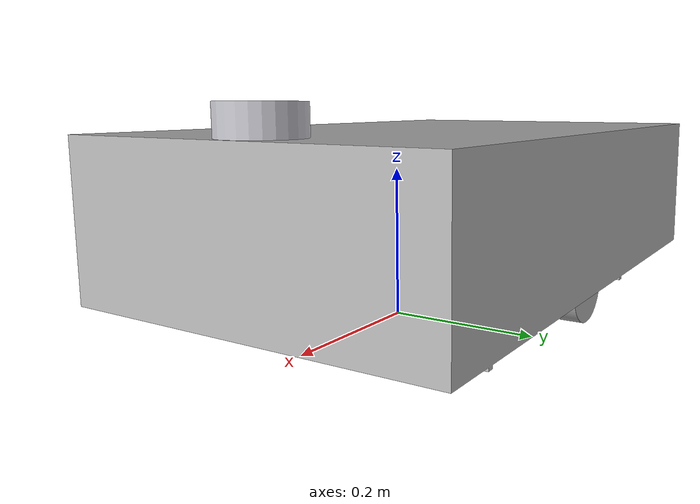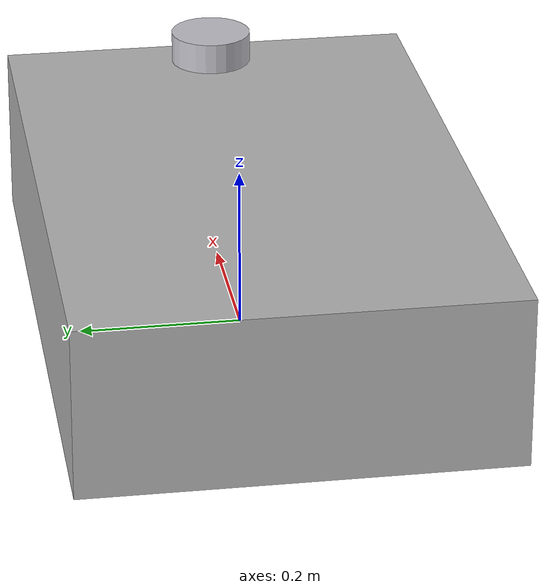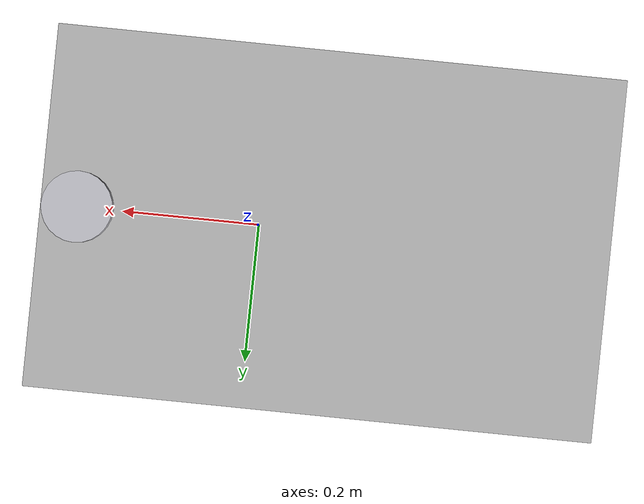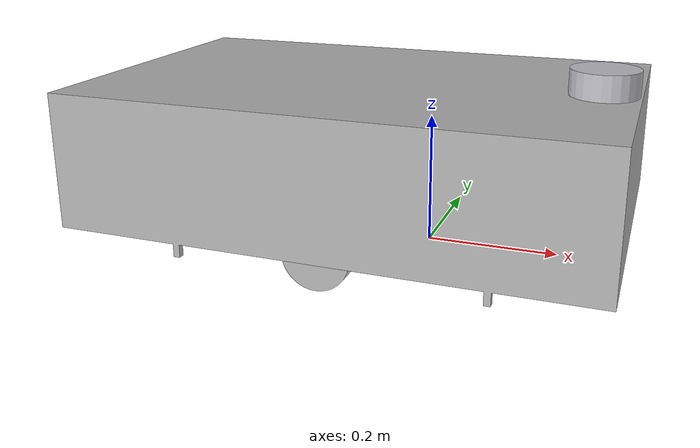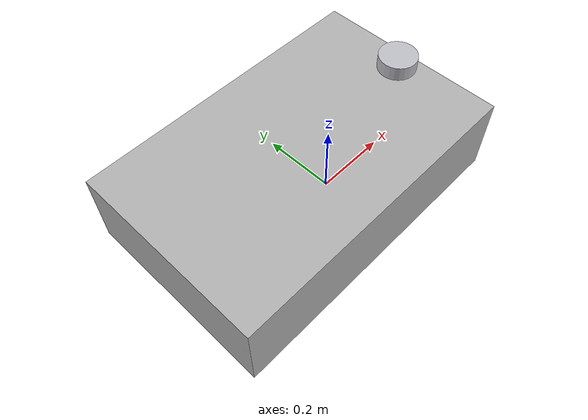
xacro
<?xml version="1.0"?>
<robot name="AMR_1" xmlns:xacro="http://www.ros.org/wiki/xacro">

  <xacro:include filename="$(find AMR_1_description)/urdf/materials.xacro" />
  <xacro:include filename="$(find AMR_1_description)/urdf/AMR_1.trans" />
  <xacro:include filename="$(find AMR_1_description)/urdf/AMR_1.gazebo" />
  <link name="base_link">
    <inertial>
      <origin xyz="-0.09707247884461136 0.002072478843386918 0.14942426072239354" rpy="0 0 0" />
      <mass value="51.82726999999997" />
      <inertia ixx="2.011849" iyy="3.961042" izz="5.206602" ixy="0.0" iyz="0.0" ixz="-0.0" />
    </inertial>
    <visual>
      <origin xyz="0 0 0" rpy="0 0 0" />
      <geometry>
        <mesh filename="package://AMR_1_description/meshes/base_link.stl" scale="0.01 0.01 0.01" />
      </geometry>
      <material name="silver" />
    </visual>
    <collision>
      <origin xyz="0 0 0" rpy="0 0 0" />
      <geometry>
        <mesh filename="package://AMR_1_description/meshes/base_link.stl" scale="0.01 0.01 0.01" />
      </geometry>
    </collision>
  </link>

  <link name="right_wheel_link">
    <inertial>
      <origin xyz="-4.788394118576678e-07 -0.014999521160592805 -8.943361532592897e-08" rpy="0 0 0" />
      <mass value="1.8496126748009905" />
      <inertia ixx="0.001295" iyy="0.002312" izz="0.001295" ixy="-0.0" iyz="0.0" ixz="0.0" />
    </inertial>
    <visual>
      <origin xyz="0.097072 0.202928 -0.049293" rpy="0 0 0" />
      <geometry>
        <mesh filename="package://AMR_1_description/meshes/Component3_1.stl"
          scale="0.01 0.01 0.01" />
      </geometry>
      <material name="silver" />
    </visual>
    <collision>
      <origin xyz="0.097072 0.202928 -0.049293" rpy="0 0 0" />
      <geometry>
        <mesh filename="package://AMR_1_description/meshes/Component3_1.stl"
          scale="0.01 0.01 0.01" />
      </geometry>
    </collision>
  </link>

  <link name="left_wheel_link">
    <inertial>
      <origin xyz="-4.788394269844565e-07 -0.014999521160591889 -8.943361524960114e-08" rpy="0 0 0" />
      <mass value="1.8496126748009905" />
      <inertia ixx="0.001295" iyy="0.002312" izz="0.001295" ixy="-0.0" iyz="-0.0" ixz="0.0" />
    </inertial>
    <visual>
      <origin xyz="0.097072 -0.237072 -0.049293" rpy="0 0 0" />
      <geometry>
        <mesh filename="package://AMR_1_description/meshes/Component1_1.stl"
          scale="0.01 0.01 0.01" />
      </geometry>
      <material name="silver" />
    </visual>
    <collision>
      <origin xyz="0.097072 -0.237072 -0.049293" rpy="0 0 0" />
      <geometry>
        <mesh filename="package://AMR_1_description/meshes/Component1_1.stl"
          scale="0.01 0.01 0.01" />
      </geometry>
    </collision>
  </link>

  <link name="lidar_link">
    <visual>
      <geometry>
        <cylinder radius="0.05" length="0.04" />
      </geometry>
    </visual>
    <collision>
      <geometry>
        <cylinder radius="0.05" length="0.04" />
      </geometry>
    </collision>
    <inertial>
      <mass value="0.5" />
      <inertia ixx="0.000252666666667" ixy="0" ixz="0" iyy="0.000252666666667" iyz="0" izz="0.0005" />
    </inertial>
  </link>

  <link name="robot_footprint">

  </link>
  <joint name="Revolute_3" type="continuous">
    <origin xyz="-0.097072 -0.202928 0.049293" rpy="0 0 0" />
    <parent link="base_link" />
    <child link="right_wheel_link" />
    <axis xyz="0.0 1.0 0.0" />
  </joint>

  <joint name="Revolute_4" type="continuous">
    <origin xyz="-0.097072 0.237072 0.049293" rpy="0 0 0" />
    <parent link="base_link" />
    <child link="left_wheel_link" />
    <axis xyz="0.0 1.0 0.0" />
  </joint>

  <joint name="Rigid_5" type="fixed">
    <origin xyz="0.25 0 0.27" rpy="0 0 0" />
    <parent link="base_link" />
    <child link="lidar_link" />
  </joint>
  <joint name="dummy_joint" type="fixed">
    <parent link="robot_footprint" />
    <child link="base_link" />
  </joint>
</robot>

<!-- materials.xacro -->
<robot name="AMR_1" xmlns:xacro="http://www.ros.org/wiki/xacro" >

<material name="silver">
  <color rgba="0.700 0.700 0.700 1.000"/>
</material>

</robot>

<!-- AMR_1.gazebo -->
<robot name="AMR_1" xmlns:xacro="http://www.ros.org/wiki/xacro">

  <xacro:property name="body_color" value="Gazebo/Silver" />

  <gazebo reference="base_link">
    <material>${body_color}</material>
    <mu1>0.2</mu1>
    <mu2>0.2</mu2>
    <selfCollide>true</selfCollide>
    <gravity>true</gravity>
  </gazebo>

  <gazebo reference="right_wheel_link">
    <material>${body_color}</material>
    <mu1>2000</mu1>
    <mu2>2000</mu2>
    <selfCollide>true</selfCollide>
  </gazebo>

  <gazebo reference="left_wheel_link">
    <material>${body_color}</material>
    <mu1>2000</mu1>
    <mu2>2000</mu2>
    <selfCollide>true</selfCollide>
  </gazebo>

  <gazebo reference="lidar_link">
    <material>${body_color}</material>
    <mu1>0.2</mu1>
    <mu2>0.2</mu2>
    <selfCollide>true</selfCollide>
  </gazebo>

  <gazebo>
    <plugin name="differential_drive_controller" filename="libgazebo_ros_diff_drive.so">

      <!-- Plugin update rate in Hz -->
      <updateRate>50</updateRate>

      <!-- Name of left joint, defaults to `left_joint` -->
      <leftJoint>Revolute_4</leftJoint>

      <!-- Name of right joint, defaults to `right_joint` -->
      <rightJoint>Revolute_3</rightJoint>

      <!-- The distance from the center of one wheel to the other, in meters, defaults to 0.34 m -->
      <wheelSeparation>0.5380</wheelSeparation>

      <!-- Diameter of the wheels, in meters, defaults to 0.15 m -->
      <wheelDiameter>0.2410</wheelDiameter>

      <!-- Wheel acceleration, in rad/s^2, defaults to 0.0 rad/s^2 -->
      <wheelAcceleration>1.0</wheelAcceleration>

      <!-- Maximum torque which the wheels can produce, in Nm, defaults to 5 Nm -->
      <wheelTorque>20</wheelTorque>

      <!-- Topic to receive geometry_msgs/Twist message commands, defaults to `cmd_vel` -->
      <commandTopic>cmd_vel</commandTopic>

      <!-- Topic to publish nav_msgs/Odometry messages, defaults to `odom` -->
      <odometryTopic>odom</odometryTopic>

      <!-- Odometry frame, defaults to `odom` -->
      <odometryFrame>odom</odometryFrame>

      <!-- Robot frame to calculate odometry from, defaults to `base_footprint` -->
      <robotBaseFrame>robot_footprint</robotBaseFrame>

      <!-- Odometry source, 0 for ENCODER, 1 for WORLD, defaults to WORLD -->
      <odometrySource>1</odometrySource>

      <!-- Set to true to publish transforms for the wheel links, defaults to false -->
      <publishWheelTF>true</publishWheelTF>

      <!-- Set to true to publish transforms for the odometry, defaults to true -->
      <publishOdom>true</publishOdom>

      <!-- Set to true to publish sensor_msgs/JointState on /joint_states for the wheel joints,
      defaults to false -->
      <publishWheelJointState>true</publishWheelJointState>

      <!-- Set to true to swap right and left wheels, defaults to true -->
      <legacyMode>false</legacyMode>
    </plugin>
  </gazebo>
  <gazebo reference="lidar_link">
    <sensor type="ray" name="head_hokuyo_sensor">
      <visualize>false</visualize>
      <update_rate>40</update_rate>
      <ray>
        <scan>
          <horizontal>
            <samples>720</samples>
            <resolution>1</resolution>
            <min_angle>-1.570796</min_angle>
            <max_angle>1.570796</max_angle>
          </horizontal>
        </scan>
        <range>
          <min>0.10</min>
          <max>10.0</max>
          <resolution>0.001</resolution>
        </range>
      </ray>
      <plugin name="gazebo_ros_head_hokuyo_controller"
        filename="libgazebo_ros_laser.so">
        <topicName>/scan</topicName>
        <frameName>lidar_link</frameName>
      </plugin>
    </sensor>
  </gazebo>
</robot>
